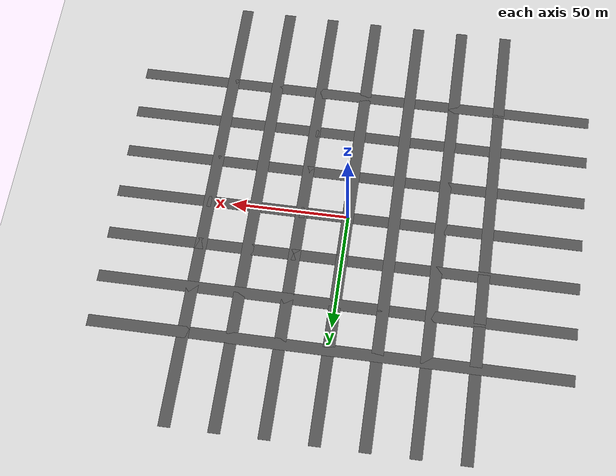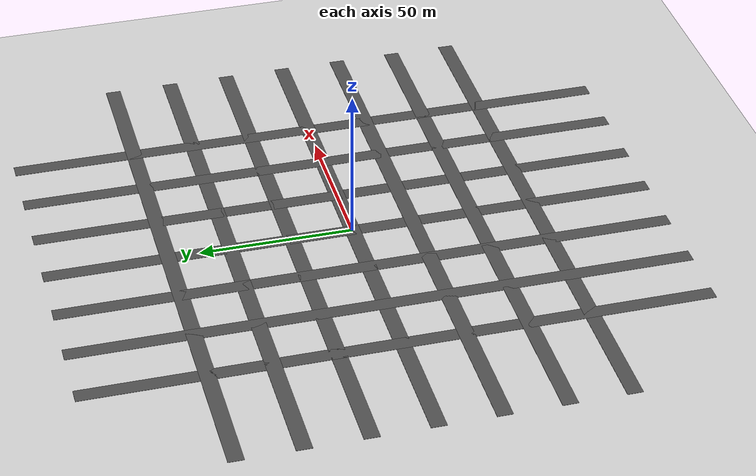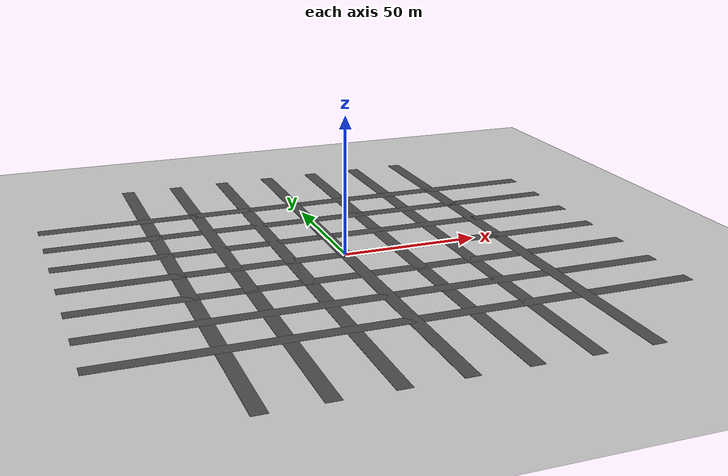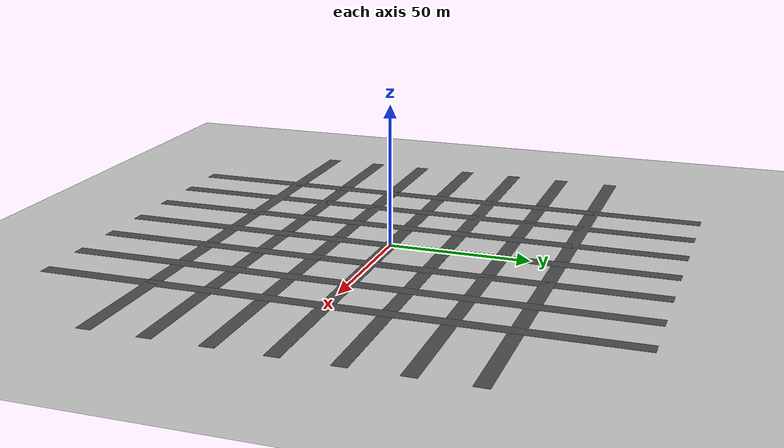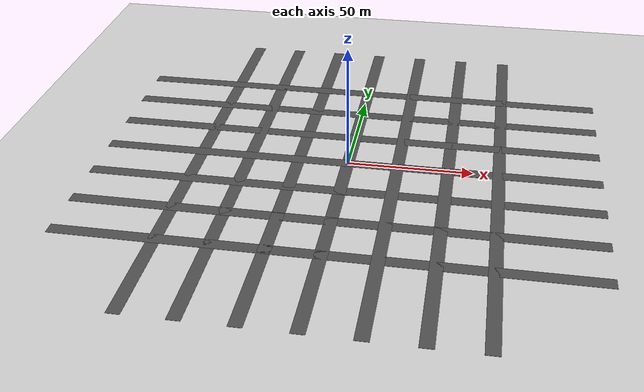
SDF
<?xml version="1.0" ?>
<sdf version="1.5">
  <world name="default">
    <!-- A global light source -->
    <include>
      <uri>model://sun</uri>
    </include>
    <!-- A ground plane -->
    <include>
      <uri>model://ground_plane</uri>
    </include>
    <!-- road grid -->
    <include>
      <uri>model://asphalt_grid</uri>
      <pose>0 0 0 0 0 0</pose>
    </include>
    <physics name='default_physics' default='0' type='ode'>
      <gravity>0 0 -9.8066</gravity>
      <ode>
        <solver>
          <type>quick</type>
          <iters>10</iters>
          <sor>1.3</sor>
          <use_dynamic_moi_rescaling>0</use_dynamic_moi_rescaling>
        </solver>
        <constraints>
          <cfm>0</cfm>
          <erp>0.2</erp>
          <contact_max_correcting_vel>100</contact_max_correcting_vel>
          <contact_surface_layer>0.001</contact_surface_layer>
        </constraints>
      </ode>
      <max_step_size>0.004</max_step_size>
      <real_time_factor>1</real_time_factor>
      <real_time_update_rate>250</real_time_update_rate>
      <magnetic_field>6.0e-6 2.3e-5 -4.2e-5</magnetic_field>
    </physics>
  </world>
</sdf>

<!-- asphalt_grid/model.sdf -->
<sdf version="1.5">
  <model name="asphalt_plane">
    <static>true</static>
    <link name="r0">
      <pose frame=''>0 0 0 0 -0 0</pose>
      <collision name="collision">
        <geometry>
          <box>
            <size>5 200 .1</size>
          </box>
        </geometry>
      </collision>
      <visual name="visual">
        <cast_shadows>false</cast_shadows>
        <geometry>
          <box>
            <size>5 200 .1</size>
          </box>
        </geometry>
        <material>
          <script>
            <uri>model://asphalt_plane/materials/scripts</uri>
            <uri>model://asphalt_plane/materials/textures</uri>
            <name>vrc/asphalt</name>
          </script>
        </material>
      </visual>
    </link>
    <link name="r1">
      <pose frame=''>20 0 0 0 -0 0</pose>
      <collision name="collision">
        <geometry>
          <box>
            <size>5 200 .1</size>
          </box>
        </geometry>
      </collision>
      <visual name="visual">
        <cast_shadows>false</cast_shadows>
        <geometry>
          <box>
            <size>5 200 .1</size>
          </box>
        </geometry>
        <material>
          <script>
            <uri>model://asphalt_plane/materials/scripts</uri>
            <uri>model://asphalt_plane/materials/textures</uri>
            <name>vrc/asphalt</name>
          </script>
        </material>
      </visual>
    </link>
    <link name="r2">
      <pose frame=''>40 0 0 0 -0 0</pose>
      <collision name="collision">
        <geometry>
          <box>
            <size>5 200 .1</size>
          </box>
        </geometry>
      </collision>
      <visual name="visual">
        <cast_shadows>false</cast_shadows>
        <geometry>
          <box>
            <size>5 200 .1</size>
          </box>
        </geometry>
        <material>
          <script>
            <uri>model://asphalt_plane/materials/scripts</uri>
            <uri>model://asphalt_plane/materials/textures</uri>
            <name>vrc/asphalt</name>
          </script>
        </material>
      </visual>
    </link>
    <link name="r3">
      <pose frame=''>60 0 0 0 -0 0</pose>
      <collision name="collision">
        <geometry>
          <box>
            <size>5 200 .1</size>
          </box>
        </geometry>
      </collision>
      <visual name="visual">
        <cast_shadows>false</cast_shadows>
        <geometry>
          <box>
            <size>5 200 .1</size>
          </box>
        </geometry>
        <material>
          <script>
            <uri>model://asphalt_plane/materials/scripts</uri>
            <uri>model://asphalt_plane/materials/textures</uri>
            <name>vrc/asphalt</name>
          </script>
        </material>
      </visual>
    </link>
    <link name="r-1">
      <pose frame=''>-20 0 0 0 -0 0</pose>
      <collision name="collision">
        <geometry>
          <box>
            <size>5 200 .1</size>
          </box>
        </geometry>
      </collision>
      <visual name="visual">
        <cast_shadows>false</cast_shadows>
        <geometry>
          <box>
            <size>5 200 .1</size>
          </box>
        </geometry>
        <material>
          <script>
            <uri>model://asphalt_plane/materials/scripts</uri>
            <uri>model://asphalt_plane/materials/textures</uri>
            <name>vrc/asphalt</name>
          </script>
        </material>
      </visual>
    </link>
    <link name="r-2">
      <pose frame=''>-40 0 0 0 -0 0</pose>
      <collision name="collision">
        <geometry>
          <box>
            <size>5 200 .1</size>
          </box>
        </geometry>
      </collision>
      <visual name="visual">
        <cast_shadows>false</cast_shadows>
        <geometry>
          <box>
            <size>5 200 .1</size>
          </box>
        </geometry>
        <material>
          <script>
            <uri>model://asphalt_plane/materials/scripts</uri>
            <uri>model://asphalt_plane/materials/textures</uri>
            <name>vrc/asphalt</name>
          </script>
        </material>
      </visual>
    </link>
    <link name="r-3">
      <pose frame=''>-60 0 0 0 -0 0</pose>
      <collision name="collision">
        <geometry>
          <box>
            <size>5 200 .1</size>
          </box>
        </geometry>
      </collision>
      <visual name="visual">
        <cast_shadows>false</cast_shadows>
        <geometry>
          <box>
            <size>5 200 .1</size>
          </box>
        </geometry>
        <material>
          <script>
            <uri>model://asphalt_plane/materials/scripts</uri>
            <uri>model://asphalt_plane/materials/textures</uri>
            <name>vrc/asphalt</name>
          </script>
        </material>
      </visual>
    </link>
    <link name="c0">
      <pose frame=''>0 0 0 0 0 1.57</pose>
      <collision name="collision">
        <geometry>
          <box>
            <size>5 200 .1</size>
          </box>
        </geometry>
      </collision>
      <visual name="visual">
        <cast_shadows>false</cast_shadows>
        <geometry>
          <box>
            <size>5 200 .1</size>
          </box>
        </geometry>
        <material>
          <script>
            <uri>model://asphalt_plane/materials/scripts</uri>
            <uri>model://asphalt_plane/materials/textures</uri>
            <name>vrc/asphalt</name>
          </script>
        </material>
      </visual>
    </link>
    <link name="c1">
      <pose frame=''>0 20 0 0 0 1.57</pose>
      <collision name="collision">
        <geometry>
          <box>
            <size>5 200 .1</size>
          </box>
        </geometry>
      </collision>
      <visual name="visual">
        <cast_shadows>false</cast_shadows>
        <geometry>
          <box>
            <size>5 200 .1</size>
          </box>
        </geometry>
        <material>
          <script>
            <uri>model://asphalt_plane/materials/scripts</uri>
            <uri>model://asphalt_plane/materials/textures</uri>
            <name>vrc/asphalt</name>
          </script>
        </material>
      </visual>
    </link>
    <link name="c2">
      <pose frame=''>0 40 0 0 0 1.57</pose>
      <collision name="collision">
        <geometry>
          <box>
            <size>5 200 .1</size>
          </box>
        </geometry>
      </collision>
      <visual name="visual">
        <cast_shadows>false</cast_shadows>
        <geometry>
          <box>
            <size>5 200 .1</size>
          </box>
        </geometry>
        <material>
          <script>
            <uri>model://asphalt_plane/materials/scripts</uri>
            <uri>model://asphalt_plane/materials/textures</uri>
            <name>vrc/asphalt</name>
          </script>
        </material>
      </visual>
    </link>
    <link name="c3">
      <pose frame=''>0 60 0 0 0 1.57</pose>
      <collision name="collision">
        <geometry>
          <box>
            <size>5 200 .1</size>
          </box>
        </geometry>
      </collision>
      <visual name="visual">
        <cast_shadows>false</cast_shadows>
        <geometry>
          <box>
            <size>5 200 .1</size>
          </box>
        </geometry>
        <material>
          <script>
            <uri>model://asphalt_plane/materials/scripts</uri>
            <uri>model://asphalt_plane/materials/textures</uri>
            <name>vrc/asphalt</name>
          </script>
        </material>
      </visual>
    </link>
    <link name="c-1">
      <pose frame=''>0 -20 0 0 0 1.57</pose>
      <collision name="collision">
        <geometry>
          <box>
            <size>5 200 .1</size>
          </box>
        </geometry>
      </collision>
      <visual name="visual">
        <cast_shadows>false</cast_shadows>
        <geometry>
          <box>
            <size>5 200 .1</size>
          </box>
        </geometry>
        <material>
          <script>
            <uri>model://asphalt_plane/materials/scripts</uri>
            <uri>model://asphalt_plane/materials/textures</uri>
            <name>vrc/asphalt</name>
          </script>
        </material>
      </visual>
    </link>
    <link name="c-2">
      <pose frame=''>0 -40 0 0 0 1.57</pose>
      <collision name="collision">
        <geometry>
          <box>
            <size>5 200 .1</size>
          </box>
        </geometry>
      </collision>
      <visual name="visual">
        <cast_shadows>false</cast_shadows>
        <geometry>
          <box>
            <size>5 200 .1</size>
          </box>
        </geometry>
        <material>
          <script>
            <uri>model://asphalt_plane/materials/scripts</uri>
            <uri>model://asphalt_plane/materials/textures</uri>
            <name>vrc/asphalt</name>
          </script>
        </material>
      </visual>
    </link>
    <link name="c-3">
      <pose frame=''>0 -60 0 0 0 1.57</pose>
      <collision name="collision">
        <geometry>
          <box>
            <size>5 200 .1</size>
          </box>
        </geometry>
      </collision>
      <visual name="visual">
        <cast_shadows>false</cast_shadows>
        <geometry>
          <box>
            <size>5 200 .1</size>
          </box>
        </geometry>
        <material>
          <script>
            <uri>model://asphalt_plane/materials/scripts</uri>
            <uri>model://asphalt_plane/materials/textures</uri>
            <name>vrc/asphalt</name>
          </script>
        </material>
      </visual>
    </link>
  </model>
</sdf>
